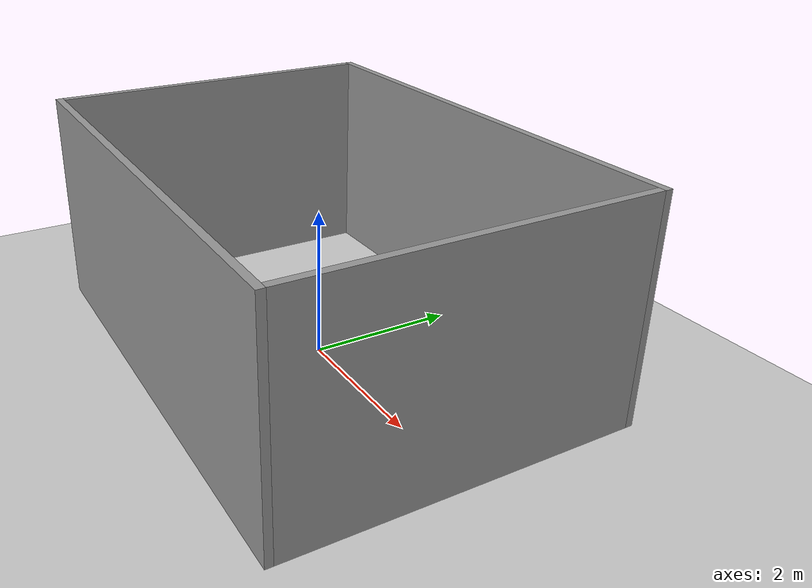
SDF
<sdf version="1.7">
 <world name="default">
  <model name="ground_plane">
   <static>1</static>
   <link name="link">
    <collision name="collision">
     <geometry><plane><normal>0 0 1</normal><size>100 100</size></plane></geometry>
     <surface>
      <contact><collide_bitmask>65535</collide_bitmask></contact>
      <friction><ode><mu>100</mu><mu2>50</mu2></ode></friction>
     </surface>
    </collision>
    <visual name="visual">
     <cast_shadows>0</cast_shadows>
     <geometry><plane><normal>0 0 1</normal><size>100 100</size></plane></geometry>
     <material>
      <script><uri>file://media/materials/scripts/gazebo.material</uri><name>Gazebo/Grey</name></script>
     </material>
    </visual>
   </link>
  </model>
  <model name="walls2">
   <link name="link_0">
    <inertial>
     <mass>1</mass>
     <inertia>
      <ixx>0.166667</ixx>
      <ixy>0</ixy>
      <ixz>0</ixz>
      <iyy>0.166667</iyy>
      <iyz>0</iyz>
      <izz>0.166667</izz>
     </inertia>
    </inertial>
    <visual name="ModelPreview_0::link_0::visual_1">
     <pose>0 -2.32 1 0 -0 0</pose>
     <geometry><box><size>6.55 0.1 2.95</size></box></geometry>
     <material>
      <lighting>1</lighting>
      <script><uri>file://media/materials/scripts/gazebo.material</uri><name>Gazebo/Grey</name></script>
      <shader type="pixel"><normal_map>__default__</normal_map></shader>
      <ambient>0.3 0.3 0.3 1</ambient>
      <diffuse>0.7 0.7 0.7 1</diffuse>
      <specular>0.01 0.01 0.01 1</specular>
      <emissive>0 0 0 1</emissive>
     </material>
    </visual>
    <visual name="ModelPreview_0::link_0::visual_3">
     <pose>-3.225 0 1 0 -0 0</pose>
     <geometry><box><size>0.1 4.54 2.95</size></box></geometry>
     <material>
      <lighting>1</lighting>
      <script><uri>file://media/materials/scripts/gazebo.material</uri><name>Gazebo/Grey</name></script>
      <shader type="pixel"><normal_map>__default__</normal_map></shader>
      <ambient>0.3 0.3 0.3 1</ambient>
      <diffuse>0.7 0.7 0.7 1</diffuse>
      <specular>0.01 0.01 0.01 1</specular>
      <emissive>0 0 0 1</emissive>
     </material>
    </visual>
    <visual name="ModelPreview_0::link_0::visual_2">
     <pose>3.225 0 1 0 -0 0</pose>
     <geometry><box><size>0.1 4.54 2.95</size></box></geometry>
     <material>
      <lighting>1</lighting>
      <script><uri>file://media/materials/scripts/gazebo.material</uri><name>Gazebo/Grey</name></script>
      <shader type="pixel"><normal_map>__default__</normal_map></shader>
      <ambient>0.3 0.3 0.3 1</ambient>
      <diffuse>0.7 0.7 0.7 1</diffuse>
      <specular>0.01 0.01 0.01 1</specular>
      <emissive>0 0 0 1</emissive>
     </material>
    </visual>
    <visual name="visual">
     <pose>0 2.32 1 0 -0 0</pose>
     <geometry><box><size>6.55 0.1 2.95</size></box></geometry>
     <material>
      <lighting>1</lighting>
      <script><uri>file://media/materials/scripts/gazebo.material</uri><name>Gazebo/Grey</name></script>
      <shader type="pixel"><normal_map>__default__</normal_map></shader>
      <ambient>0.3 0.3 0.3 1</ambient>
      <diffuse>0.7 0.7 0.7 1</diffuse>
      <specular>0.01 0.01 0.01 1</specular>
      <emissive>0 0 0 1</emissive>
     </material>
    </visual>
    <collision name="collision">
     <pose>0 2.32 1 0 -0 0</pose>
     <geometry><box><size>6.55 0.1 2.95</size></box></geometry>
     <surface>
      <friction>
       <ode><mu>1</mu><mu2>1</mu2><fdir1>0 0 0</fdir1><slip1>0</slip1><slip2>0</slip2></ode>
       <torsional>
        <coefficient>1</coefficient>
        <patch_radius>0</patch_radius>
        <surface_radius>0</surface_radius>
        <use_patch_radius>1</use_patch_radius>
        <ode><slip>0</slip></ode>
       </torsional>
      </friction>
      <bounce><restitution_coefficient>0</restitution_coefficient><threshold>1e+06</threshold></bounce>
      <contact>
       <collide_without_contact>0</collide_without_contact>
       <collide_without_contact_bitmask>1</collide_without_contact_bitmask>
       <collide_bitmask>1</collide_bitmask>
       <ode>
        <soft_cfm>0</soft_cfm>
        <soft_erp>0.2</soft_erp>
        <kp>1e+13</kp>
        <kd>1</kd>
        <max_vel>0.01</max_vel>
        <min_depth>0</min_depth>
       </ode>
       <bullet>
        <split_impulse>1</split_impulse>
        <split_impulse_penetration_threshold>-0.01</split_impulse_penetration_threshold>
        <soft_cfm>0</soft_cfm>
        <soft_erp>0.2</soft_erp>
        <kp>1e+13</kp>
        <kd>1</kd>
       </bullet>
      </contact>
     </surface>
    </collision>
    <collision name="collision_1">
     <pose>0 -2.32 1 0 -0 0</pose>
     <geometry><box><size>6.55 0.1 2.95</size></box></geometry>
     <surface>
      <friction>
       <ode><mu>1</mu><mu2>1</mu2><fdir1>0 0 0</fdir1><slip1>0</slip1><slip2>0</slip2></ode>
       <torsional>
        <coefficient>1</coefficient>
        <patch_radius>0</patch_radius>
        <surface_radius>0</surface_radius>
        <use_patch_radius>1</use_patch_radius>
        <ode><slip>0</slip></ode>
       </torsional>
      </friction>
      <bounce><restitution_coefficient>0</restitution_coefficient><threshold>1e+06</threshold></bounce>
      <contact>
       <collide_without_contact>0</collide_without_contact>
       <collide_without_contact_bitmask>1</collide_without_contact_bitmask>
       <collide_bitmask>1</collide_bitmask>
       <ode>
        <soft_cfm>0</soft_cfm>
        <soft_erp>0.2</soft_erp>
        <kp>1e+13</kp>
        <kd>1</kd>
        <max_vel>0.01</max_vel>
        <min_depth>0</min_depth>
       </ode>
       <bullet>
        <split_impulse>1</split_impulse>
        <split_impulse_penetration_threshold>-0.01</split_impulse_penetration_threshold>
        <soft_cfm>0</soft_cfm>
        <soft_erp>0.2</soft_erp>
        <kp>1e+13</kp>
        <kd>1</kd>
       </bullet>
      </contact>
     </surface>
    </collision>
    <collision name="collision_2">
     <pose>3.225 0 1 0 -0 0</pose>
     <geometry><box><size>0.1 4.54 2.95</size></box></geometry>
     <surface>
      <friction>
       <ode><mu>1</mu><mu2>1</mu2><fdir1>0 0 0</fdir1><slip1>0</slip1><slip2>0</slip2></ode>
       <torsional>
        <coefficient>1</coefficient>
        <patch_radius>0</patch_radius>
        <surface_radius>0</surface_radius>
        <use_patch_radius>1</use_patch_radius>
        <ode><slip>0</slip></ode>
       </torsional>
      </friction>
      <bounce><restitution_coefficient>0</restitution_coefficient><threshold>1e+06</threshold></bounce>
      <contact>
       <collide_without_contact>0</collide_without_contact>
       <collide_without_contact_bitmask>1</collide_without_contact_bitmask>
       <collide_bitmask>1</collide_bitmask>
       <ode>
        <soft_cfm>0</soft_cfm>
        <soft_erp>0.2</soft_erp>
        <kp>1e+13</kp>
        <kd>1</kd>
        <max_vel>0.01</max_vel>
        <min_depth>0</min_depth>
       </ode>
       <bullet>
        <split_impulse>1</split_impulse>
        <split_impulse_penetration_threshold>-0.01</split_impulse_penetration_threshold>
        <soft_cfm>0</soft_cfm>
        <soft_erp>0.2</soft_erp>
        <kp>1e+13</kp>
        <kd>1</kd>
       </bullet>
      </contact>
     </surface>
    </collision>
    <collision name="collision_3">
     <pose>-3.225 0 1 0 -0 0</pose>
     <geometry><box><size>0.1 4.54 2.95</size></box></geometry>
     <surface>
      <friction>
       <ode><mu>1</mu><mu2>1</mu2><fdir1>0 0 0</fdir1><slip1>0</slip1><slip2>0</slip2></ode>
       <torsional>
        <coefficient>1</coefficient>
        <patch_radius>0</patch_radius>
        <surface_radius>0</surface_radius>
        <use_patch_radius>1</use_patch_radius>
        <ode><slip>0</slip></ode>
       </torsional>
      </friction>
      <bounce><restitution_coefficient>0</restitution_coefficient><threshold>1e+06</threshold></bounce>
      <contact>
       <collide_without_contact>0</collide_without_contact>
       <collide_without_contact_bitmask>1</collide_without_contact_bitmask>
       <collide_bitmask>1</collide_bitmask>
       <ode>
        <soft_cfm>0</soft_cfm>
        <soft_erp>0.2</soft_erp>
        <kp>1e+13</kp>
        <kd>1</kd>
        <max_vel>0.01</max_vel>
        <min_depth>0</min_depth>
       </ode>
       <bullet>
        <split_impulse>1</split_impulse>
        <split_impulse_penetration_threshold>-0.01</split_impulse_penetration_threshold>
        <soft_cfm>0</soft_cfm>
        <soft_erp>0.2</soft_erp>
        <kp>1e+13</kp>
        <kd>1</kd>
       </bullet>
      </contact>
     </surface>
    </collision>
   </link>
   <static>1</static>
   <pose>0 0 0.5 0 -0 0</pose>
  </model>
 </world>
</sdf>
